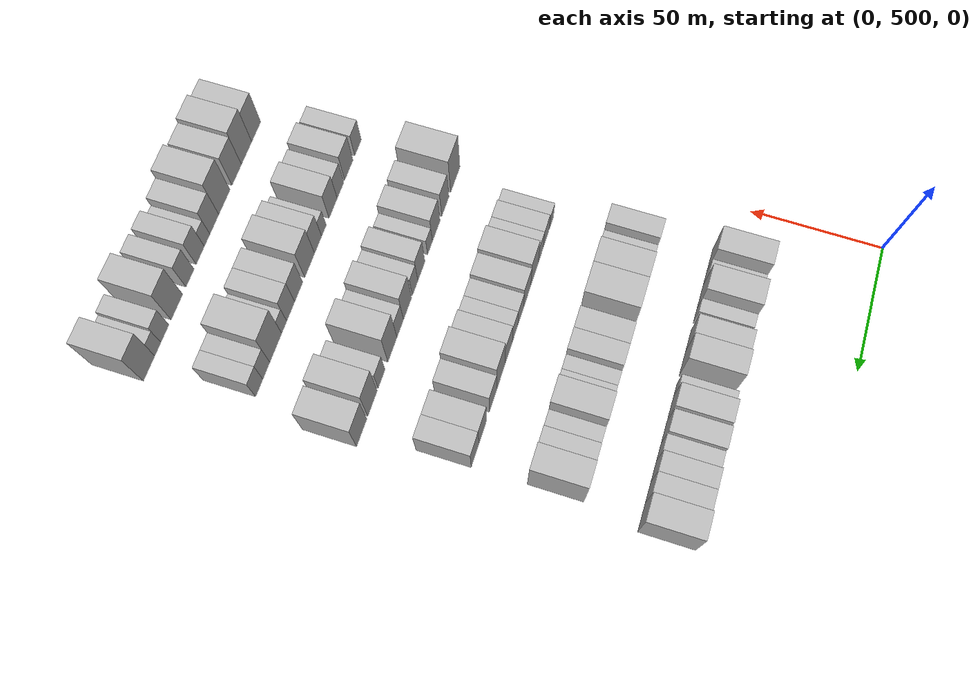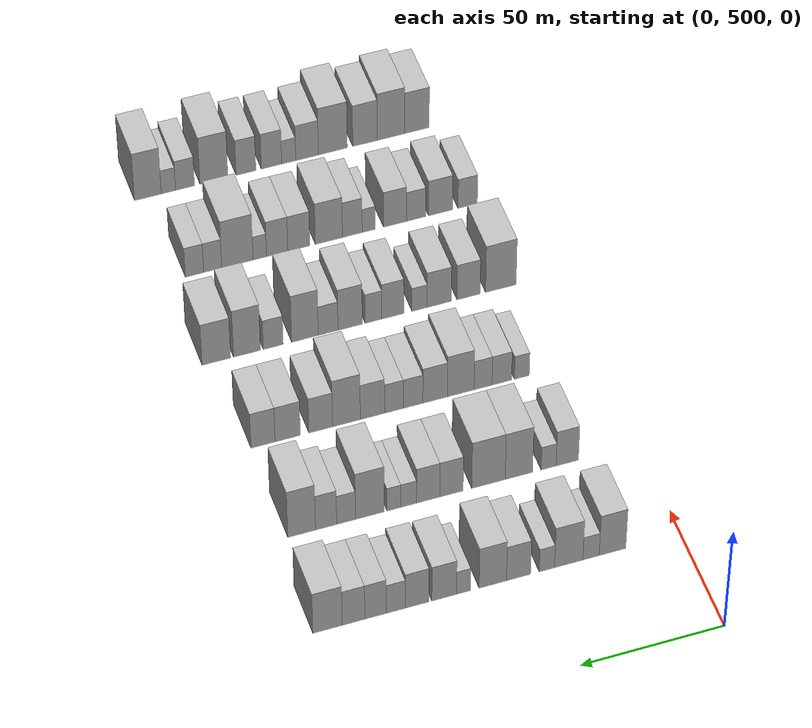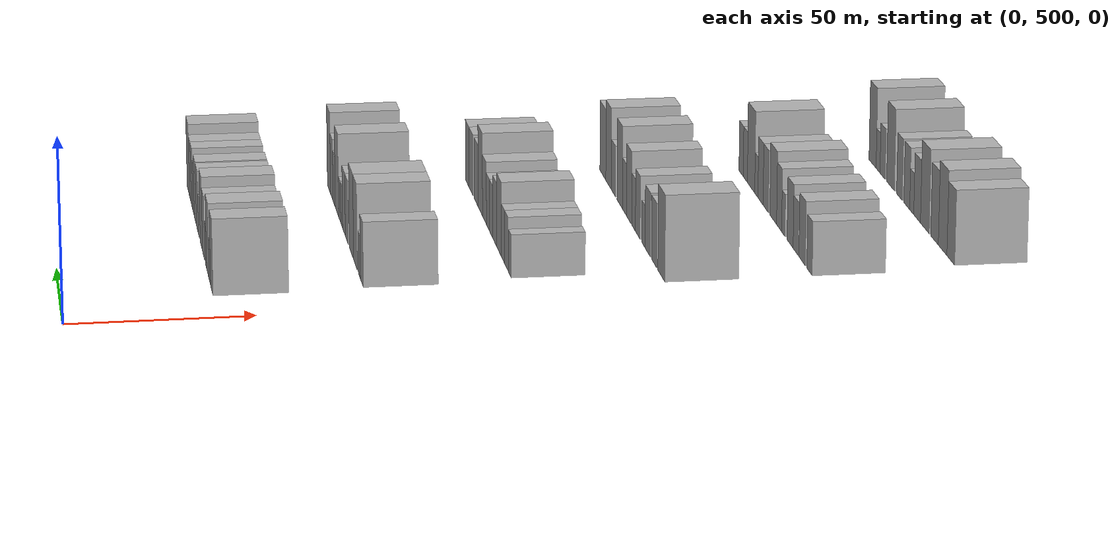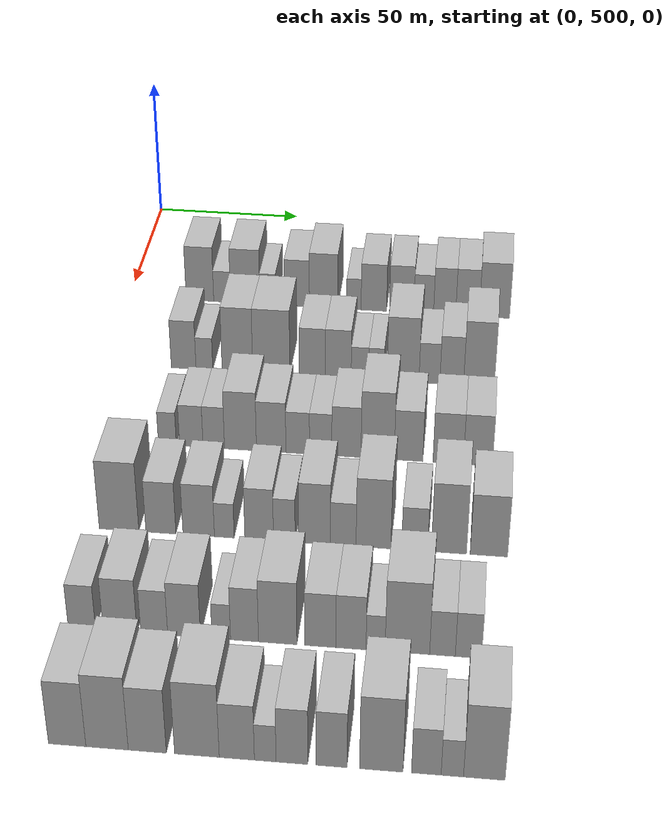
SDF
<sdf version="1.6">
 <world name="default">
  <model name="building_128">
   <static>1</static>
   <pose>50.0000 524.1655 0 0.000000 0.000000 0.000000</pose>
   <link name="link">
    <pose>0 0 10.50 0 0 0</pose>
    <collision name="collision"><geometry><box><size>20.0000 9.3599 21.0000</size></box></geometry></collision>
    <visual name="visual">
     <cast_shadows>0</cast_shadows>
     <geometry><box><size>20.0000 9.3599 21.0000</size></box></geometry>
     <material>
      <script>
       <uri>model://HANNAS_wall/materials/scripts</uri>
       <uri>model://HANNAS_wall/materials/textures</uri>
       <name>vrc/HANNAS_wall</name>
      </script>
     </material>
    </visual>
   </link>
  </model>
  <model name="building_129">
   <static>1</static>
   <pose>50.0000 531.7003 0 0.000000 0.000000 0.000000</pose>
   <link name="link">
    <pose>0 0 6.00 0 0 0</pose>
    <collision name="collision"><geometry><box><size>20.0000 5.7096 12.0000</size></box></geometry></collision>
    <visual name="visual">
     <cast_shadows>0</cast_shadows>
     <geometry><box><size>20.0000 5.7096 12.0000</size></box></geometry>
     <material>
      <script>
       <uri>model://HANNAS_wall/materials/scripts</uri>
       <uri>model://HANNAS_wall/materials/textures</uri>
       <name>vrc/HANNAS_wall</name>
      </script>
     </material>
    </visual>
   </link>
  </model>
  <model name="building_130">
   <static>1</static>
   <pose>50.0000 539.5301 0 0.000000 0.000000 0.000000</pose>
   <link name="link">
    <pose>0 0 10.50 0 0 0</pose>
    <collision name="collision"><geometry><box><size>20.0000 9.9501 21.0000</size></box></geometry></collision>
    <visual name="visual">
     <cast_shadows>0</cast_shadows>
     <geometry><box><size>20.0000 9.9501 21.0000</size></box></geometry>
     <material>
      <script>
       <uri>model://HANNAS_wall/materials/scripts</uri>
       <uri>model://HANNAS_wall/materials/textures</uri>
       <name>vrc/HANNAS_wall</name>
      </script>
     </material>
    </visual>
   </link>
  </model>
  <model name="building_131">
   <static>1</static>
   <pose>50.0000 547.1738 0 0.000000 0.000000 0.000000</pose>
   <link name="link">
    <pose>0 0 6.00 0 0 0</pose>
    <collision name="collision"><geometry><box><size>20.0000 5.3373 12.0000</size></box></geometry></collision>
    <visual name="visual">
     <cast_shadows>0</cast_shadows>
     <geometry><box><size>20.0000 5.3373 12.0000</size></box></geometry>
     <material>
      <script>
       <uri>model://HANNAS_wall/materials/scripts</uri>
       <uri>model://HANNAS_wall/materials/textures</uri>
       <name>vrc/HANNAS_wall</name>
      </script>
     </material>
    </visual>
   </link>
  </model>
  <model name="building_132">
   <static>1</static>
   <pose>50.0000 557.0391 0 0.000000 0.000000 0.000000</pose>
   <link name="link">
    <pose>0 0 9.00 0 0 0</pose>
    <collision name="collision"><geometry><box><size>20.0000 8.3932 18.0000</size></box></geometry></collision>
    <visual name="visual">
     <cast_shadows>0</cast_shadows>
     <geometry><box><size>20.0000 8.3932 18.0000</size></box></geometry>
     <material>
      <script>
       <uri>model://HANNAS_wall/materials/scripts</uri>
       <uri>model://HANNAS_wall/materials/textures</uri>
       <name>vrc/HANNAS_wall</name>
      </script>
     </material>
    </visual>
   </link>
  </model>
  <model name="building_133">
   <static>1</static>
   <pose>50.0000 565.9929 0 0.000000 0.000000 0.000000</pose>
   <link name="link">
    <pose>0 0 10.50 0 0 0</pose>
    <collision name="collision"><geometry><box><size>20.0000 9.5145 21.0000</size></box></geometry></collision>
    <visual name="visual">
     <cast_shadows>0</cast_shadows>
     <geometry><box><size>20.0000 9.5145 21.0000</size></box></geometry>
     <material>
      <script>
       <uri>model://HANNAS_wall/materials/scripts</uri>
       <uri>model://HANNAS_wall/materials/textures</uri>
       <name>vrc/HANNAS_wall</name>
      </script>
     </material>
    </visual>
   </link>
  </model>
  <model name="building_134">
   <static>1</static>
   <pose>50.0000 576.1622 0 0.000000 0.000000 0.000000</pose>
   <link name="link">
    <pose>0 0 6.00 0 0 0</pose>
    <collision name="collision"><geometry><box><size>20.0000 4.8240 12.0000</size></box></geometry></collision>
    <visual name="visual">
     <cast_shadows>0</cast_shadows>
     <geometry><box><size>20.0000 4.8240 12.0000</size></box></geometry>
     <material>
      <script>
       <uri>model://HANNAS_wall/materials/scripts</uri>
       <uri>model://HANNAS_wall/materials/textures</uri>
       <name>vrc/HANNAS_wall</name>
      </script>
     </material>
    </visual>
   </link>
  </model>
  <model name="building_135">
   <static>1</static>
   <pose>50.0000 582.8428 0 0.000000 0.000000 0.000000</pose>
   <link name="link">
    <pose>0 0 9.00 0 0 0</pose>
    <collision name="collision"><geometry><box><size>20.0000 8.5372 18.0000</size></box></geometry></collision>
    <visual name="visual">
     <cast_shadows>0</cast_shadows>
     <geometry><box><size>20.0000 8.5372 18.0000</size></box></geometry>
     <material>
      <script>
       <uri>model://HANNAS_wall/materials/scripts</uri>
       <uri>model://HANNAS_wall/materials/textures</uri>
       <name>vrc/HANNAS_wall</name>
      </script>
     </material>
    </visual>
   </link>
  </model>
  <model name="building_136">
   <static>1</static>
   <pose>50.0000 592.1822 0 0.000000 0.000000 0.000000</pose>
   <link name="link">
    <pose>0 0 9.00 0 0 0</pose>
    <collision name="collision"><geometry><box><size>20.0000 8.1417 18.0000</size></box></geometry></collision>
    <visual name="visual">
     <cast_shadows>0</cast_shadows>
     <geometry><box><size>20.0000 8.1417 18.0000</size></box></geometry>
     <material>
      <script>
       <uri>model://HANNAS_wall/materials/scripts</uri>
       <uri>model://HANNAS_wall/materials/textures</uri>
       <name>vrc/HANNAS_wall</name>
      </script>
     </material>
    </visual>
   </link>
  </model>
  <model name="building_137">
   <static>1</static>
   <pose>50.0000 599.5396 0 0.000000 0.000000 0.000000</pose>
   <link name="link">
    <pose>0 0 7.50 0 0 0</pose>
    <collision name="collision"><geometry><box><size>20.0000 6.5730 15.0000</size></box></geometry></collision>
    <visual name="visual">
     <cast_shadows>0</cast_shadows>
     <geometry><box><size>20.0000 6.5730 15.0000</size></box></geometry>
     <material>
      <script>
       <uri>model://HANNAS_wall/materials/scripts</uri>
       <uri>model://HANNAS_wall/materials/textures</uri>
       <name>vrc/HANNAS_wall</name>
      </script>
     </material>
    </visual>
   </link>
  </model>
  <model name="building_138">
   <static>1</static>
   <pose>50.0000 606.4986 0 0.000000 0.000000 0.000000</pose>
   <link name="link">
    <pose>0 0 9.00 0 0 0</pose>
    <collision name="collision"><geometry><box><size>20.0000 7.3450 18.0000</size></box></geometry></collision>
    <visual name="visual">
     <cast_shadows>0</cast_shadows>
     <geometry><box><size>20.0000 7.3450 18.0000</size></box></geometry>
     <material>
      <script>
       <uri>model://HANNAS_wall/materials/scripts</uri>
       <uri>model://HANNAS_wall/materials/textures</uri>
       <name>vrc/HANNAS_wall</name>
      </script>
     </material>
    </visual>
   </link>
  </model>
  <model name="building_139">
   <static>1</static>
   <pose>50.0000 614.0654 0 0.000000 0.000000 0.000000</pose>
   <link name="link">
    <pose>0 0 9.00 0 0 0</pose>
    <collision name="collision"><geometry><box><size>20.0000 7.7885 18.0000</size></box></geometry></collision>
    <visual name="visual">
     <cast_shadows>0</cast_shadows>
     <geometry><box><size>20.0000 7.7885 18.0000</size></box></geometry>
     <material>
      <script>
       <uri>model://HANNAS_wall/materials/scripts</uri>
       <uri>model://HANNAS_wall/materials/textures</uri>
       <name>vrc/HANNAS_wall</name>
      </script>
     </material>
    </visual>
   </link>
  </model>
  <model name="building_140">
   <static>1</static>
   <pose>50.0000 622.9785 0 0.000000 0.000000 0.000000</pose>
   <link name="link">
    <pose>0 0 10.50 0 0 0</pose>
    <collision name="collision"><geometry><box><size>20.0000 10.0376 21.0000</size></box></geometry></collision>
    <visual name="visual">
     <cast_shadows>0</cast_shadows>
     <geometry><box><size>20.0000 10.0376 21.0000</size></box></geometry>
     <material>
      <script>
       <uri>model://HANNAS_wall/materials/scripts</uri>
       <uri>model://HANNAS_wall/materials/textures</uri>
       <name>vrc/HANNAS_wall</name>
      </script>
     </material>
    </visual>
   </link>
  </model>
  <model name="building_263">
   <static>1</static>
   <pose>90.0000 525.4689 0 0.000000 0.000000 0.000000</pose>
   <link name="link">
    <pose>0 0 9.00 0 0 0</pose>
    <collision name="collision"><geometry><box><size>20.0000 7.9334 18.0000</size></box></geometry></collision>
    <visual name="visual">
     <cast_shadows>0</cast_shadows>
     <geometry><box><size>20.0000 7.9334 18.0000</size></box></geometry>
     <material>
      <script>
       <uri>model://HANNAS_wall/materials/scripts</uri>
       <uri>model://HANNAS_wall/materials/textures</uri>
       <name>vrc/HANNAS_wall</name>
      </script>
     </material>
    </visual>
   </link>
  </model>
  <model name="building_264">
   <static>1</static>
   <pose>90.0000 532.1202 0 0.000000 0.000000 0.000000</pose>
   <link name="link">
    <pose>0 0 6.00 0 0 0</pose>
    <collision name="collision"><geometry><box><size>20.0000 5.3691 12.0000</size></box></geometry></collision>
    <visual name="visual">
     <cast_shadows>0</cast_shadows>
     <geometry><box><size>20.0000 5.3691 12.0000</size></box></geometry>
     <material>
      <script>
       <uri>model://HANNAS_wall/materials/scripts</uri>
       <uri>model://HANNAS_wall/materials/textures</uri>
       <name>vrc/HANNAS_wall</name>
      </script>
     </material>
    </visual>
   </link>
  </model>
  <model name="building_265">
   <static>1</static>
   <pose>90.0000 542.6974 0 0.000000 0.000000 0.000000</pose>
   <link name="link">
    <pose>0 0 12.00 0 0 0</pose>
    <collision name="collision"><geometry><box><size>20.0000 9.7853 24.0000</size></box></geometry></collision>
    <visual name="visual">
     <cast_shadows>0</cast_shadows>
     <geometry><box><size>20.0000 9.7853 24.0000</size></box></geometry>
     <material>
      <script>
       <uri>model://HANNAS_wall/materials/scripts</uri>
       <uri>model://HANNAS_wall/materials/textures</uri>
       <name>vrc/HANNAS_wall</name>
      </script>
     </material>
    </visual>
   </link>
  </model>
  <model name="building_266">
   <static>1</static>
   <pose>90.0000 553.4992 0 0.000000 0.000000 0.000000</pose>
   <link name="link">
    <pose>0 0 12.00 0 0 0</pose>
    <collision name="collision"><geometry><box><size>20.0000 11.8182 24.0000</size></box></geometry></collision>
    <visual name="visual">
     <cast_shadows>0</cast_shadows>
     <geometry><box><size>20.0000 11.8182 24.0000</size></box></geometry>
     <material>
      <script>
       <uri>model://HANNAS_wall/materials/scripts</uri>
       <uri>model://HANNAS_wall/materials/textures</uri>
       <name>vrc/HANNAS_wall</name>
      </script>
     </material>
    </visual>
   </link>
  </model>
  <model name="building_267">
   <static>1</static>
   <pose>90.0000 566.5282 0 0.000000 0.000000 0.000000</pose>
   <link name="link">
    <pose>0 0 9.00 0 0 0</pose>
    <collision name="collision"><geometry><box><size>20.0000 8.2398 18.0000</size></box></geometry></collision>
    <visual name="visual">
     <cast_shadows>0</cast_shadows>
     <geometry><box><size>20.0000 8.2398 18.0000</size></box></geometry>
     <material>
      <script>
       <uri>model://HANNAS_wall/materials/scripts</uri>
       <uri>model://HANNAS_wall/materials/textures</uri>
       <name>vrc/HANNAS_wall</name>
      </script>
     </material>
    </visual>
   </link>
  </model>
  <model name="building_268">
   <static>1</static>
   <pose>90.0000 574.7511 0 0.000000 0.000000 0.000000</pose>
   <link name="link">
    <pose>0 0 9.00 0 0 0</pose>
    <collision name="collision"><geometry><box><size>20.0000 8.2061 18.0000</size></box></geometry></collision>
    <visual name="visual">
     <cast_shadows>0</cast_shadows>
     <geometry><box><size>20.0000 8.2061 18.0000</size></box></geometry>
     <material>
      <script>
       <uri>model://HANNAS_wall/materials/scripts</uri>
       <uri>model://HANNAS_wall/materials/textures</uri>
       <name>vrc/HANNAS_wall</name>
      </script>
     </material>
    </visual>
   </link>
  </model>
  <model name="building_269">
   <static>1</static>
   <pose>90.0000 581.5996 0 0.000000 0.000000 0.000000</pose>
   <link name="link">
    <pose>0 0 6.00 0 0 0</pose>
    <collision name="collision"><geometry><box><size>20.0000 5.4908 12.0000</size></box></geometry></collision>
    <visual name="visual">
     <cast_shadows>0</cast_shadows>
     <geometry><box><size>20.0000 5.4908 12.0000</size></box></geometry>
     <material>
      <script>
       <uri>model://HANNAS_wall/materials/scripts</uri>
       <uri>model://HANNAS_wall/materials/textures</uri>
       <name>vrc/HANNAS_wall</name>
      </script>
     </material>
    </visual>
   </link>
  </model>
  <model name="building_270">
   <static>1</static>
   <pose>90.0000 586.7724 0 0.000000 0.000000 0.000000</pose>
   <link name="link">
    <pose>0 0 6.00 0 0 0</pose>
    <collision name="collision"><geometry><box><size>20.0000 4.8548 12.0000</size></box></geometry></collision>
    <visual name="visual">
     <cast_shadows>0</cast_shadows>
     <geometry><box><size>20.0000 4.8548 12.0000</size></box></geometry>
     <material>
      <script>
       <uri>model://HANNAS_wall/materials/scripts</uri>
       <uri>model://HANNAS_wall/materials/textures</uri>
       <name>vrc/HANNAS_wall</name>
      </script>
     </material>
    </visual>
   </link>
  </model>
  <model name="building_271">
   <static>1</static>
   <pose>90.0000 595.2187 0 0.000000 0.000000 0.000000</pose>
   <link name="link">
    <pose>0 0 12.00 0 0 0</pose>
    <collision name="collision"><geometry><box><size>20.0000 10.0378 24.0000</size></box></geometry></collision>
    <visual name="visual">
     <cast_shadows>0</cast_shadows>
     <geometry><box><size>20.0000 10.0378 24.0000</size></box></geometry>
     <material>
      <script>
       <uri>model://HANNAS_wall/materials/scripts</uri>
       <uri>model://HANNAS_wall/materials/textures</uri>
       <name>vrc/HANNAS_wall</name>
      </script>
     </material>
    </visual>
   </link>
  </model>
  <model name="building_272">
   <static>1</static>
   <pose>90.0000 603.5141 0 0.000000 0.000000 0.000000</pose>
   <link name="link">
    <pose>0 0 7.50 0 0 0</pose>
    <collision name="collision"><geometry><box><size>20.0000 6.5531 15.0000</size></box></geometry></collision>
    <visual name="visual">
     <cast_shadows>0</cast_shadows>
     <geometry><box><size>20.0000 6.5531 15.0000</size></box></geometry>
     <material>
      <script>
       <uri>model://HANNAS_wall/materials/scripts</uri>
       <uri>model://HANNAS_wall/materials/textures</uri>
       <name>vrc/HANNAS_wall</name>
      </script>
     </material>
    </visual>
   </link>
  </model>
  <model name="building_273">
   <static>1</static>
   <pose>90.0000 610.4930 0 0.000000 0.000000 0.000000</pose>
   <link name="link">
    <pose>0 0 9.00 0 0 0</pose>
    <collision name="collision"><geometry><box><size>20.0000 7.4047 18.0000</size></box></geometry></collision>
    <visual name="visual">
     <cast_shadows>0</cast_shadows>
     <geometry><box><size>20.0000 7.4047 18.0000</size></box></geometry>
     <material>
      <script>
       <uri>model://HANNAS_wall/materials/scripts</uri>
       <uri>model://HANNAS_wall/materials/textures</uri>
       <name>vrc/HANNAS_wall</name>
      </script>
     </material>
    </visual>
   </link>
  </model>
  <model name="building_274">
   <static>1</static>
   <pose>90.0000 619.0040 0 0.000000 0.000000 0.000000</pose>
   <link name="link">
    <pose>0 0 12.00 0 0 0</pose>
    <collision name="collision"><geometry><box><size>20.0000 9.6171 24.0000</size></box></geometry></collision>
    <visual name="visual">
     <cast_shadows>0</cast_shadows>
     <geometry><box><size>20.0000 9.6171 24.0000</size></box></geometry>
     <material>
      <script>
       <uri>model://HANNAS_wall/materials/scripts</uri>
       <uri>model://HANNAS_wall/materials/textures</uri>
       <name>vrc/HANNAS_wall</name>
      </script>
     </material>
    </visual>
   </link>
  </model>
  <model name="building_402">
   <static>1</static>
   <pose>130.0000 527.3983 0 0.000000 0.000000 0.000000</pose>
   <link name="link">
    <pose>0 0 6.00 0 0 0</pose>
    <collision name="collision"><geometry><box><size>20.0000 5.4114 12.0000</size></box></geometry></collision>
    <visual name="visual">
     <cast_shadows>0</cast_shadows>
     <geometry><box><size>20.0000 5.4114 12.0000</size></box></geometry>
     <material>
      <script>
       <uri>model://HANNAS_wall/materials/scripts</uri>
       <uri>model://HANNAS_wall/materials/textures</uri>
       <name>vrc/HANNAS_wall</name>
      </script>
     </material>
    </visual>
   </link>
  </model>
  <model name="building_403">
   <static>1</static>
   <pose>130.0000 534.6347 0 0.000000 0.000000 0.000000</pose>
   <link name="link">
    <pose>0 0 7.50 0 0 0</pose>
    <collision name="collision"><geometry><box><size>20.0000 7.0615 15.0000</size></box></geometry></collision>
    <visual name="visual">
     <cast_shadows>0</cast_shadows>
     <geometry><box><size>20.0000 7.0615 15.0000</size></box></geometry>
     <material>
      <script>
       <uri>model://HANNAS_wall/materials/scripts</uri>
       <uri>model://HANNAS_wall/materials/textures</uri>
       <name>vrc/HANNAS_wall</name>
      </script>
     </material>
    </visual>
   </link>
  </model>
  <model name="building_404">
   <static>1</static>
   <pose>130.0000 541.3958 0 0.000000 0.000000 0.000000</pose>
   <link name="link">
    <pose>0 0 7.50 0 0 0</pose>
    <collision name="collision"><geometry><box><size>20.0000 6.4606 15.0000</size></box></geometry></collision>
    <visual name="visual">
     <cast_shadows>0</cast_shadows>
     <geometry><box><size>20.0000 6.4606 15.0000</size></box></geometry>
     <material>
      <script>
       <uri>model://HANNAS_wall/materials/scripts</uri>
       <uri>model://HANNAS_wall/materials/textures</uri>
       <name>vrc/HANNAS_wall</name>
      </script>
     </material>
    </visual>
   </link>
  </model>
  <model name="building_405">
   <static>1</static>
   <pose>130.0000 549.4182 0 0.000000 0.000000 0.000000</pose>
   <link name="link">
    <pose>0 0 10.50 0 0 0</pose>
    <collision name="collision"><geometry><box><size>20.0000 9.5842 21.0000</size></box></geometry></collision>
    <visual name="visual">
     <cast_shadows>0</cast_shadows>
     <geometry><box><size>20.0000 9.5842 21.0000</size></box></geometry>
     <material>
      <script>
       <uri>model://HANNAS_wall/materials/scripts</uri>
       <uri>model://HANNAS_wall/materials/textures</uri>
       <name>vrc/HANNAS_wall</name>
      </script>
     </material>
    </visual>
   </link>
  </model>
  <model name="building_406">
   <static>1</static>
   <pose>130.0000 558.6119 0 0.000000 0.000000 0.000000</pose>
   <link name="link">
    <pose>0 0 9.00 0 0 0</pose>
    <collision name="collision"><geometry><box><size>20.0000 8.8032 18.0000</size></box></geometry></collision>
    <visual name="visual">
     <cast_shadows>0</cast_shadows>
     <geometry><box><size>20.0000 8.8032 18.0000</size></box></geometry>
     <material>
      <script>
       <uri>model://HANNAS_wall/materials/scripts</uri>
       <uri>model://HANNAS_wall/materials/textures</uri>
       <name>vrc/HANNAS_wall</name>
      </script>
     </material>
    </visual>
   </link>
  </model>
  <model name="building_407">
   <static>1</static>
   <pose>130.0000 566.5294 0 0.000000 0.000000 0.000000</pose>
   <link name="link">
    <pose>0 0 7.50 0 0 0</pose>
    <collision name="collision"><geometry><box><size>20.0000 7.0318 15.0000</size></box></geometry></collision>
    <visual name="visual">
     <cast_shadows>0</cast_shadows>
     <geometry><box><size>20.0000 7.0318 15.0000</size></box></geometry>
     <material>
      <script>
       <uri>model://HANNAS_wall/materials/scripts</uri>
       <uri>model://HANNAS_wall/materials/textures</uri>
       <name>vrc/HANNAS_wall</name>
      </script>
     </material>
    </visual>
   </link>
  </model>
  <model name="building_408">
   <static>1</static>
   <pose>130.0000 573.3612 0 0.000000 0.000000 0.000000</pose>
   <link name="link">
    <pose>0 0 7.50 0 0 0</pose>
    <collision name="collision"><geometry><box><size>20.0000 6.6319 15.0000</size></box></geometry></collision>
    <visual name="visual">
     <cast_shadows>0</cast_shadows>
     <geometry><box><size>20.0000 6.6319 15.0000</size></box></geometry>
     <material>
      <script>
       <uri>model://HANNAS_wall/materials/scripts</uri>
       <uri>model://HANNAS_wall/materials/textures</uri>
       <name>vrc/HANNAS_wall</name>
      </script>
     </material>
    </visual>
   </link>
  </model>
  <model name="building_409">
   <static>1</static>
   <pose>130.0000 581.0123 0 0.000000 0.000000 0.000000</pose>
   <link name="link">
    <pose>0 0 9.00 0 0 0</pose>
    <collision name="collision"><geometry><box><size>20.0000 8.6702 18.0000</size></box></geometry></collision>
    <visual name="visual">
     <cast_shadows>0</cast_shadows>
     <geometry><box><size>20.0000 8.6702 18.0000</size></box></geometry>
     <material>
      <script>
       <uri>model://HANNAS_wall/materials/scripts</uri>
       <uri>model://HANNAS_wall/materials/textures</uri>
       <name>vrc/HANNAS_wall</name>
      </script>
     </material>
    </visual>
   </link>
  </model>
  <model name="building_410">
   <static>1</static>
   <pose>130.0000 590.2803 0 0.000000 0.000000 0.000000</pose>
   <link name="link">
    <pose>0 0 12.00 0 0 0</pose>
    <collision name="collision"><geometry><box><size>20.0000 9.8660 24.0000</size></box></geometry></collision>
    <visual name="visual">
     <cast_shadows>0</cast_shadows>
     <geometry><box><size>20.0000 9.8660 24.0000</size></box></geometry>
     <material>
      <script>
       <uri>model://HANNAS_wall/materials/scripts</uri>
       <uri>model://HANNAS_wall/materials/textures</uri>
       <name>vrc/HANNAS_wall</name>
      </script>
     </material>
    </visual>
   </link>
  </model>
  <model name="building_411">
   <static>1</static>
   <pose>130.0000 599.4263 0 0.000000 0.000000 0.000000</pose>
   <link name="link">
    <pose>0 0 9.00 0 0 0</pose>
    <collision name="collision"><geometry><box><size>20.0000 8.4260 18.0000</size></box></geometry></collision>
    <visual name="visual">
     <cast_shadows>0</cast_shadows>
     <geometry><box><size>20.0000 8.4260 18.0000</size></box></geometry>
     <material>
      <script>
       <uri>model://HANNAS_wall/materials/scripts</uri>
       <uri>model://HANNAS_wall/materials/textures</uri>
       <name>vrc/HANNAS_wall</name>
      </script>
     </material>
    </visual>
   </link>
  </model>
  <model name="building_412">
   <static>1</static>
   <pose>130.0000 611.1164 0 0.000000 0.000000 0.000000</pose>
   <link name="link">
    <pose>0 0 9.00 0 0 0</pose>
    <collision name="collision"><geometry><box><size>20.0000 8.9542 18.0000</size></box></geometry></collision>
    <visual name="visual">
     <cast_shadows>0</cast_shadows>
     <geometry><box><size>20.0000 8.9542 18.0000</size></box></geometry>
     <material>
      <script>
       <uri>model://HANNAS_wall/materials/scripts</uri>
       <uri>model://HANNAS_wall/materials/textures</uri>
       <name>vrc/HANNAS_wall</name>
      </script>
     </material>
    </visual>
   </link>
  </model>
  <model name="building_413">
   <static>1</static>
   <pose>130.0000 619.8438 0 0.000000 0.000000 0.000000</pose>
   <link name="link">
    <pose>0 0 9.00 0 0 0</pose>
    <collision name="collision"><geometry><box><size>20.0000 8.5006 18.0000</size></box></geometry></collision>
    <visual name="visual">
     <cast_shadows>0</cast_shadows>
     <geometry><box><size>20.0000 8.5006 18.0000</size></box></geometry>
     <material>
      <script>
       <uri>model://HANNAS_wall/materials/scripts</uri>
       <uri>model://HANNAS_wall/materials/textures</uri>
       <name>vrc/HANNAS_wall</name>
      </script>
     </material>
    </visual>
   </link>
  </model>
  <model name="building_529">
   <static>1</static>
   <pose>170.0000 520.8770 0 0.000000 0.000000 0.000000</pose>
   <link name="link">
    <pose>0 0 12.00 0 0 0</pose>
    <collision name="collision"><geometry><box><size>20.0000 11.2288 24.0000</size></box></geometry></collision>
    <visual name="visual">
     <cast_shadows>0</cast_shadows>
     <geometry><box><size>20.0000 11.2288 24.0000</size></box></geometry>
     <material>
      <script>
       <uri>model://HANNAS_wall/materials/scripts</uri>
       <uri>model://HANNAS_wall/materials/textures</uri>
       <name>vrc/HANNAS_wall</name>
      </script>
     </material>
    </visual>
   </link>
  </model>
  <model name="building_530">
   <static>1</static>
   <pose>170.0000 532.7389 0 0.000000 0.000000 0.000000</pose>
   <link name="link">
    <pose>0 0 9.00 0 0 0</pose>
    <collision name="collision"><geometry><box><size>20.0000 8.4951 18.0000</size></box></geometry></collision>
    <visual name="visual">
     <cast_shadows>0</cast_shadows>
     <geometry><box><size>20.0000 8.4951 18.0000</size></box></geometry>
     <material>
      <script>
       <uri>model://HANNAS_wall/materials/scripts</uri>
       <uri>model://HANNAS_wall/materials/textures</uri>
       <name>vrc/HANNAS_wall</name>
      </script>
     </material>
    </visual>
   </link>
  </model>
  <model name="building_531">
   <static>1</static>
   <pose>170.0000 543.4149 0 0.000000 0.000000 0.000000</pose>
   <link name="link">
    <pose>0 0 9.00 0 0 0</pose>
    <collision name="collision"><geometry><box><size>20.0000 8.8570 18.0000</size></box></geometry></collision>
    <visual name="visual">
     <cast_shadows>0</cast_shadows>
     <geometry><box><size>20.0000 8.8570 18.0000</size></box></geometry>
     <material>
      <script>
       <uri>model://HANNAS_wall/materials/scripts</uri>
       <uri>model://HANNAS_wall/materials/textures</uri>
       <name>vrc/HANNAS_wall</name>
      </script>
     </material>
    </visual>
   </link>
  </model>
  <model name="building_532">
   <static>1</static>
   <pose>170.0000 550.6193 0 0.000000 0.000000 0.000000</pose>
   <link name="link">
    <pose>0 0 6.00 0 0 0</pose>
    <collision name="collision"><geometry><box><size>20.0000 5.5518 12.0000</size></box></geometry></collision>
    <visual name="visual">
     <cast_shadows>0</cast_shadows>
     <geometry><box><size>20.0000 5.5518 12.0000</size></box></geometry>
     <material>
      <script>
       <uri>model://HANNAS_wall/materials/scripts</uri>
       <uri>model://HANNAS_wall/materials/textures</uri>
       <name>vrc/HANNAS_wall</name>
      </script>
     </material>
    </visual>
   </link>
  </model>
  <model name="building_533">
   <static>1</static>
   <pose>170.0000 560.3920 0 0.000000 0.000000 0.000000</pose>
   <link name="link">
    <pose>0 0 9.00 0 0 0</pose>
    <collision name="collision"><geometry><box><size>20.0000 7.9935 18.0000</size></box></geometry></collision>
    <visual name="visual">
     <cast_shadows>0</cast_shadows>
     <geometry><box><size>20.0000 7.9935 18.0000</size></box></geometry>
     <material>
      <script>
       <uri>model://HANNAS_wall/materials/scripts</uri>
       <uri>model://HANNAS_wall/materials/textures</uri>
       <name>vrc/HANNAS_wall</name>
      </script>
     </material>
    </visual>
   </link>
  </model>
  <model name="building_534">
   <static>1</static>
   <pose>170.0000 567.4216 0 0.000000 0.000000 0.000000</pose>
   <link name="link">
    <pose>0 0 7.50 0 0 0</pose>
    <collision name="collision"><geometry><box><size>20.0000 6.0657 15.0000</size></box></geometry></collision>
    <visual name="visual">
     <cast_shadows>0</cast_shadows>
     <geometry><box><size>20.0000 6.0657 15.0000</size></box></geometry>
     <material>
      <script>
       <uri>model://HANNAS_wall/materials/scripts</uri>
       <uri>model://HANNAS_wall/materials/textures</uri>
       <name>vrc/HANNAS_wall</name>
      </script>
     </material>
    </visual>
   </link>
  </model>
  <model name="building_535">
   <static>1</static>
   <pose>170.0000 575.8625 0 0.000000 0.000000 0.000000</pose>
   <link name="link">
    <pose>0 0 10.50 0 0 0</pose>
    <collision name="collision"><geometry><box><size>20.0000 8.8162 21.0000</size></box></geometry></collision>
    <visual name="visual">
     <cast_shadows>0</cast_shadows>
     <geometry><box><size>20.0000 8.8162 21.0000</size></box></geometry>
     <material>
      <script>
       <uri>model://HANNAS_wall/materials/scripts</uri>
       <uri>model://HANNAS_wall/materials/textures</uri>
       <name>vrc/HANNAS_wall</name>
      </script>
     </material>
    </visual>
   </link>
  </model>
  <model name="building_536">
   <static>1</static>
   <pose>170.0000 583.8295 0 0.000000 0.000000 0.000000</pose>
   <link name="link">
    <pose>0 0 7.50 0 0 0</pose>
    <collision name="collision"><geometry><box><size>20.0000 7.1177 15.0000</size></box></geometry></collision>
    <visual name="visual">
     <cast_shadows>0</cast_shadows>
     <geometry><box><size>20.0000 7.1177 15.0000</size></box></geometry>
     <material>
      <script>
       <uri>model://HANNAS_wall/materials/scripts</uri>
       <uri>model://HANNAS_wall/materials/textures</uri>
       <name>vrc/HANNAS_wall</name>
      </script>
     </material>
    </visual>
   </link>
  </model>
  <model name="building_537">
   <static>1</static>
   <pose>170.0000 592.2007 0 0.000000 0.000000 0.000000</pose>
   <link name="link">
    <pose>0 0 12.00 0 0 0</pose>
    <collision name="collision"><geometry><box><size>20.0000 9.6248 24.0000</size></box></geometry></collision>
    <visual name="visual">
     <cast_shadows>0</cast_shadows>
     <geometry><box><size>20.0000 9.6248 24.0000</size></box></geometry>
     <material>
      <script>
       <uri>model://HANNAS_wall/materials/scripts</uri>
       <uri>model://HANNAS_wall/materials/textures</uri>
       <name>vrc/HANNAS_wall</name>
      </script>
     </material>
    </visual>
   </link>
  </model>
  <model name="building_538">
   <static>1</static>
   <pose>170.0000 603.6072 0 0.000000 0.000000 0.000000</pose>
   <link name="link">
    <pose>0 0 7.50 0 0 0</pose>
    <collision name="collision"><geometry><box><size>20.0000 7.1881 15.0000</size></box></geometry></collision>
    <visual name="visual">
     <cast_shadows>0</cast_shadows>
     <geometry><box><size>20.0000 7.1881 15.0000</size></box></geometry>
     <material>
      <script>
       <uri>model://HANNAS_wall/materials/scripts</uri>
       <uri>model://HANNAS_wall/materials/textures</uri>
       <name>vrc/HANNAS_wall</name>
      </script>
     </material>
    </visual>
   </link>
  </model>
  <model name="building_539">
   <static>1</static>
   <pose>170.0000 613.0363 0 0.000000 0.000000 0.000000</pose>
   <link name="link">
    <pose>0 0 12.00 0 0 0</pose>
    <collision name="collision"><geometry><box><size>20.0000 9.6700 24.0000</size></box></geometry></collision>
    <visual name="visual">
     <cast_shadows>0</cast_shadows>
     <geometry><box><size>20.0000 9.6700 24.0000</size></box></geometry>
     <material>
      <script>
       <uri>model://HANNAS_wall/materials/scripts</uri>
       <uri>model://HANNAS_wall/materials/textures</uri>
       <name>vrc/HANNAS_wall</name>
      </script>
     </material>
    </visual>
   </link>
  </model>
  <model name="building_540">
   <static>1</static>
   <pose>170.0000 623.9938 0 0.000000 0.000000 0.000000</pose>
   <link name="link">
    <pose>0 0 10.50 0 0 0</pose>
    <collision name="collision"><geometry><box><size>20.0000 10.2451 21.0000</size></box></geometry></collision>
    <visual name="visual">
     <cast_shadows>0</cast_shadows>
     <geometry><box><size>20.0000 10.2451 21.0000</size></box></geometry>
     <material>
      <script>
       <uri>model://HANNAS_wall/materials/scripts</uri>
       <uri>model://HANNAS_wall/materials/textures</uri>
       <name>vrc/HANNAS_wall</name>
      </script>
     </material>
    </visual>
   </link>
  </model>
  <model name="building_674">
   <static>1</static>
   <pose>210.0000 519.1646 0 0.000000 0.000000 0.000000</pose>
   <link name="link">
    <pose>0 0 7.50 0 0 0</pose>
    <collision name="collision"><geometry><box><size>20.0000 7.2383 15.0000</size></box></geometry></collision>
    <visual name="visual">
     <cast_shadows>0</cast_shadows>
     <geometry><box><size>20.0000 7.2383 15.0000</size></box></geometry>
     <material>
      <script>
       <uri>model://HANNAS_wall/materials/scripts</uri>
       <uri>model://HANNAS_wall/materials/textures</uri>
       <name>vrc/HANNAS_wall</name>
      </script>
     </material>
    </visual>
   </link>
  </model>
  <model name="building_675">
   <static>1</static>
   <pose>210.0000 529.2689 0 0.000000 0.000000 0.000000</pose>
   <link name="link">
    <pose>0 0 9.00 0 0 0</pose>
    <collision name="collision"><geometry><box><size>20.0000 8.9703 18.0000</size></box></geometry></collision>
    <visual name="visual">
     <cast_shadows>0</cast_shadows>
     <geometry><box><size>20.0000 8.9703 18.0000</size></box></geometry>
     <material>
      <script>
       <uri>model://HANNAS_wall/materials/scripts</uri>
       <uri>model://HANNAS_wall/materials/textures</uri>
       <name>vrc/HANNAS_wall</name>
      </script>
     </material>
    </visual>
   </link>
  </model>
  <model name="building_676">
   <static>1</static>
   <pose>210.0000 538.2975 0 0.000000 0.000000 0.000000</pose>
   <link name="link">
    <pose>0 0 7.50 0 0 0</pose>
    <collision name="collision"><geometry><box><size>20.0000 7.0870 15.0000</size></box></geometry></collision>
    <visual name="visual">
     <cast_shadows>0</cast_shadows>
     <geometry><box><size>20.0000 7.0870 15.0000</size></box></geometry>
     <material>
      <script>
       <uri>model://HANNAS_wall/materials/scripts</uri>
       <uri>model://HANNAS_wall/materials/textures</uri>
       <name>vrc/HANNAS_wall</name>
      </script>
     </material>
    </visual>
   </link>
  </model>
  <model name="building_677">
   <static>1</static>
   <pose>210.0000 546.1446 0 0.000000 0.000000 0.000000</pose>
   <link name="link">
    <pose>0 0 9.00 0 0 0</pose>
    <collision name="collision"><geometry><box><size>20.0000 8.6071 18.0000</size></box></geometry></collision>
    <visual name="visual">
     <cast_shadows>0</cast_shadows>
     <geometry><box><size>20.0000 8.6071 18.0000</size></box></geometry>
     <material>
      <script>
       <uri>model://HANNAS_wall/materials/scripts</uri>
       <uri>model://HANNAS_wall/materials/textures</uri>
       <name>vrc/HANNAS_wall</name>
      </script>
     </material>
    </visual>
   </link>
  </model>
  <model name="building_678">
   <static>1</static>
   <pose>210.0000 555.8765 0 0.000000 0.000000 0.000000</pose>
   <link name="link">
    <pose>0 0 6.00 0 0 0</pose>
    <collision name="collision"><geometry><box><size>20.0000 4.8568 12.0000</size></box></geometry></collision>
    <visual name="visual">
     <cast_shadows>0</cast_shadows>
     <geometry><box><size>20.0000 4.8568 12.0000</size></box></geometry>
     <material>
      <script>
       <uri>model://HANNAS_wall/materials/scripts</uri>
       <uri>model://HANNAS_wall/materials/textures</uri>
       <name>vrc/HANNAS_wall</name>
      </script>
     </material>
    </visual>
   </link>
  </model>
  <model name="building_679">
   <static>1</static>
   <pose>210.0000 561.9498 0 0.000000 0.000000 0.000000</pose>
   <link name="link">
    <pose>0 0 9.00 0 0 0</pose>
    <collision name="collision"><geometry><box><size>20.0000 7.2898 18.0000</size></box></geometry></collision>
    <visual name="visual">
     <cast_shadows>0</cast_shadows>
     <geometry><box><size>20.0000 7.2898 18.0000</size></box></geometry>
     <material>
      <script>
       <uri>model://HANNAS_wall/materials/scripts</uri>
       <uri>model://HANNAS_wall/materials/textures</uri>
       <name>vrc/HANNAS_wall</name>
      </script>
     </material>
    </visual>
   </link>
  </model>
  <model name="building_680">
   <static>1</static>
   <pose>210.0000 570.5884 0 0.000000 0.000000 0.000000</pose>
   <link name="link">
    <pose>0 0 10.50 0 0 0</pose>
    <collision name="collision"><geometry><box><size>20.0000 9.9874 21.0000</size></box></geometry></collision>
    <visual name="visual">
     <cast_shadows>0</cast_shadows>
     <geometry><box><size>20.0000 9.9874 21.0000</size></box></geometry>
     <material>
      <script>
       <uri>model://HANNAS_wall/materials/scripts</uri>
       <uri>model://HANNAS_wall/materials/textures</uri>
       <name>vrc/HANNAS_wall</name>
      </script>
     </material>
    </visual>
   </link>
  </model>
  <model name="building_681">
   <static>1</static>
   <pose>210.0000 581.6278 0 0.000000 0.000000 0.000000</pose>
   <link name="link">
    <pose>0 0 9.00 0 0 0</pose>
    <collision name="collision"><geometry><box><size>20.0000 8.0915 18.0000</size></box></geometry></collision>
    <visual name="visual">
     <cast_shadows>0</cast_shadows>
     <geometry><box><size>20.0000 8.0915 18.0000</size></box></geometry>
     <material>
      <script>
       <uri>model://HANNAS_wall/materials/scripts</uri>
       <uri>model://HANNAS_wall/materials/textures</uri>
       <name>vrc/HANNAS_wall</name>
      </script>
     </material>
    </visual>
   </link>
  </model>
  <model name="building_682">
   <static>1</static>
   <pose>210.0000 589.5628 0 0.000000 0.000000 0.000000</pose>
   <link name="link">
    <pose>0 0 9.00 0 0 0</pose>
    <collision name="collision"><geometry><box><size>20.0000 7.7786 18.0000</size></box></geometry></collision>
    <visual name="visual">
     <cast_shadows>0</cast_shadows>
     <geometry><box><size>20.0000 7.7786 18.0000</size></box></geometry>
     <material>
      <script>
       <uri>model://HANNAS_wall/materials/scripts</uri>
       <uri>model://HANNAS_wall/materials/textures</uri>
       <name>vrc/HANNAS_wall</name>
      </script>
     </material>
    </visual>
   </link>
  </model>
  <model name="building_683">
   <static>1</static>
   <pose>210.0000 595.9127 0 0.000000 0.000000 0.000000</pose>
   <link name="link">
    <pose>0 0 6.00 0 0 0</pose>
    <collision name="collision"><geometry><box><size>20.0000 4.9212 12.0000</size></box></geometry></collision>
    <visual name="visual">
     <cast_shadows>0</cast_shadows>
     <geometry><box><size>20.0000 4.9212 12.0000</size></box></geometry>
     <material>
      <script>
       <uri>model://HANNAS_wall/materials/scripts</uri>
       <uri>model://HANNAS_wall/materials/textures</uri>
       <name>vrc/HANNAS_wall</name>
      </script>
     </material>
    </visual>
   </link>
  </model>
  <model name="building_684">
   <static>1</static>
   <pose>210.0000 604.0859 0 0.000000 0.000000 0.000000</pose>
   <link name="link">
    <pose>0 0 12.00 0 0 0</pose>
    <collision name="collision"><geometry><box><size>20.0000 11.4252 24.0000</size></box></geometry></collision>
    <visual name="visual">
     <cast_shadows>0</cast_shadows>
     <geometry><box><size>20.0000 11.4252 24.0000</size></box></geometry>
     <material>
      <script>
       <uri>model://HANNAS_wall/materials/scripts</uri>
       <uri>model://HANNAS_wall/materials/textures</uri>
       <name>vrc/HANNAS_wall</name>
      </script>
     </material>
    </visual>
   </link>
  </model>
  <model name="building_685">
   <static>1</static>
   <pose>210.0000 613.0786 0 0.000000 0.000000 0.000000</pose>
   <link name="link">
    <pose>0 0 7.50 0 0 0</pose>
    <collision name="collision"><geometry><box><size>20.0000 6.5601 15.0000</size></box></geometry></collision>
    <visual name="visual">
     <cast_shadows>0</cast_shadows>
     <geometry><box><size>20.0000 6.5601 15.0000</size></box></geometry>
     <material>
      <script>
       <uri>model://HANNAS_wall/materials/scripts</uri>
       <uri>model://HANNAS_wall/materials/textures</uri>
       <name>vrc/HANNAS_wall</name>
      </script>
     </material>
    </visual>
   </link>
  </model>
  <model name="building_686">
   <static>1</static>
   <pose>210.0000 619.7136 0 0.000000 0.000000 0.000000</pose>
   <link name="link">
    <pose>0 0 7.50 0 0 0</pose>
    <collision name="collision"><geometry><box><size>20.0000 6.7100 15.0000</size></box></geometry></collision>
    <visual name="visual">
     <cast_shadows>0</cast_shadows>
     <geometry><box><size>20.0000 6.7100 15.0000</size></box></geometry>
     <material>
      <script>
       <uri>model://HANNAS_wall/materials/scripts</uri>
       <uri>model://HANNAS_wall/materials/textures</uri>
       <name>vrc/HANNAS_wall</name>
      </script>
     </material>
    </visual>
   </link>
  </model>
  <model name="building_800">
   <static>1</static>
   <pose>250.0000 524.4258 0 0.000000 0.000000 0.000000</pose>
   <link name="link">
    <pose>0 0 10.50 0 0 0</pose>
    <collision name="collision"><geometry><box><size>20.0000 9.1909 21.0000</size></box></geometry></collision>
    <visual name="visual">
     <cast_shadows>0</cast_shadows>
     <geometry><box><size>20.0000 9.1909 21.0000</size></box></geometry>
     <material>
      <script>
       <uri>model://HANNAS_wall/materials/scripts</uri>
       <uri>model://HANNAS_wall/materials/textures</uri>
       <name>vrc/HANNAS_wall</name>
      </script>
     </material>
    </visual>
   </link>
  </model>
  <model name="building_801">
   <static>1</static>
   <pose>250.0000 534.2070 0 0.000000 0.000000 0.000000</pose>
   <link name="link">
    <pose>0 0 12.00 0 0 0</pose>
    <collision name="collision"><geometry><box><size>20.0000 10.3714 24.0000</size></box></geometry></collision>
    <visual name="visual">
     <cast_shadows>0</cast_shadows>
     <geometry><box><size>20.0000 10.3714 24.0000</size></box></geometry>
     <material>
      <script>
       <uri>model://HANNAS_wall/materials/scripts</uri>
       <uri>model://HANNAS_wall/materials/textures</uri>
       <name>vrc/HANNAS_wall</name>
      </script>
     </material>
    </visual>
   </link>
  </model>
  <model name="building_802">
   <static>1</static>
   <pose>250.0000 544.0336 0 0.000000 0.000000 0.000000</pose>
   <link name="link">
    <pose>0 0 10.50 0 0 0</pose>
    <collision name="collision"><geometry><box><size>20.0000 9.2820 21.0000</size></box></geometry></collision>
    <visual name="visual">
     <cast_shadows>0</cast_shadows>
     <geometry><box><size>20.0000 9.2820 21.0000</size></box></geometry>
     <material>
      <script>
       <uri>model://HANNAS_wall/materials/scripts</uri>
       <uri>model://HANNAS_wall/materials/textures</uri>
       <name>vrc/HANNAS_wall</name>
      </script>
     </material>
    </visual>
   </link>
  </model>
  <model name="building_803">
   <static>1</static>
   <pose>250.0000 556.0919 0 0.000000 0.000000 0.000000</pose>
   <link name="link">
    <pose>0 0 12.00 0 0 0</pose>
    <collision name="collision"><geometry><box><size>20.0000 10.8346 24.0000</size></box></geometry></collision>
    <visual name="visual">
     <cast_shadows>0</cast_shadows>
     <geometry><box><size>20.0000 10.8346 24.0000</size></box></geometry>
     <material>
      <script>
       <uri>model://HANNAS_wall/materials/scripts</uri>
       <uri>model://HANNAS_wall/materials/textures</uri>
       <name>vrc/HANNAS_wall</name>
      </script>
     </material>
    </visual>
   </link>
  </model>
  <model name="building_804">
   <static>1</static>
   <pose>250.0000 565.7550 0 0.000000 0.000000 0.000000</pose>
   <link name="link">
    <pose>0 0 9.00 0 0 0</pose>
    <collision name="collision"><geometry><box><size>20.0000 8.4915 18.0000</size></box></geometry></collision>
    <visual name="visual">
     <cast_shadows>0</cast_shadows>
     <geometry><box><size>20.0000 8.4915 18.0000</size></box></geometry>
     <material>
      <script>
       <uri>model://HANNAS_wall/materials/scripts</uri>
       <uri>model://HANNAS_wall/materials/textures</uri>
       <name>vrc/HANNAS_wall</name>
      </script>
     </material>
    </visual>
   </link>
  </model>
  <model name="building_805">
   <static>1</static>
   <pose>250.0000 572.6090 0 0.000000 0.000000 0.000000</pose>
   <link name="link">
    <pose>0 0 6.00 0 0 0</pose>
    <collision name="collision"><geometry><box><size>20.0000 5.2165 12.0000</size></box></geometry></collision>
    <visual name="visual">
     <cast_shadows>0</cast_shadows>
     <geometry><box><size>20.0000 5.2165 12.0000</size></box></geometry>
     <material>
      <script>
       <uri>model://HANNAS_wall/materials/scripts</uri>
       <uri>model://HANNAS_wall/materials/textures</uri>
       <name>vrc/HANNAS_wall</name>
      </script>
     </material>
    </visual>
   </link>
  </model>
  <model name="building_806">
   <static>1</static>
   <pose>250.0000 579.0186 0 0.000000 0.000000 0.000000</pose>
   <link name="link">
    <pose>0 0 9.00 0 0 0</pose>
    <collision name="collision"><geometry><box><size>20.0000 7.6027 18.0000</size></box></geometry></collision>
    <visual name="visual">
     <cast_shadows>0</cast_shadows>
     <geometry><box><size>20.0000 7.6027 18.0000</size></box></geometry>
     <material>
      <script>
       <uri>model://HANNAS_wall/materials/scripts</uri>
       <uri>model://HANNAS_wall/materials/textures</uri>
       <name>vrc/HANNAS_wall</name>
      </script>
     </material>
    </visual>
   </link>
  </model>
  <model name="building_807">
   <static>1</static>
   <pose>250.0000 588.5155 0 0.000000 0.000000 0.000000</pose>
   <link name="link">
    <pose>0 0 9.00 0 0 0</pose>
    <collision name="collision"><geometry><box><size>20.0000 7.3912 18.0000</size></box></geometry></collision>
    <visual name="visual">
     <cast_shadows>0</cast_shadows>
     <geometry><box><size>20.0000 7.3912 18.0000</size></box></geometry>
     <material>
      <script>
       <uri>model://HANNAS_wall/materials/scripts</uri>
       <uri>model://HANNAS_wall/materials/textures</uri>
       <name>vrc/HANNAS_wall</name>
      </script>
     </material>
    </visual>
   </link>
  </model>
  <model name="building_808">
   <static>1</static>
   <pose>250.0000 600.3913 0 0.000000 0.000000 0.000000</pose>
   <link name="link">
    <pose>0 0 12.00 0 0 0</pose>
    <collision name="collision"><geometry><box><size>20.0000 10.3604 24.0000</size></box></geometry></collision>
    <visual name="visual">
     <cast_shadows>0</cast_shadows>
     <geometry><box><size>20.0000 10.3604 24.0000</size></box></geometry>
     <material>
      <script>
       <uri>model://HANNAS_wall/materials/scripts</uri>
       <uri>model://HANNAS_wall/materials/textures</uri>
       <name>vrc/HANNAS_wall</name>
      </script>
     </material>
    </visual>
   </link>
  </model>
  <model name="building_809">
   <static>1</static>
   <pose>250.0000 611.0864 0 0.000000 0.000000 0.000000</pose>
   <link name="link">
    <pose>0 0 7.50 0 0 0</pose>
    <collision name="collision"><geometry><box><size>20.0000 7.0299 15.0000</size></box></geometry></collision>
    <visual name="visual">
     <cast_shadows>0</cast_shadows>
     <geometry><box><size>20.0000 7.0299 15.0000</size></box></geometry>
     <material>
      <script>
       <uri>model://HANNAS_wall/materials/scripts</uri>
       <uri>model://HANNAS_wall/materials/textures</uri>
       <name>vrc/HANNAS_wall</name>
      </script>
     </material>
    </visual>
   </link>
  </model>
  <model name="building_810">
   <static>1</static>
   <pose>250.0000 617.2448 0 0.000000 0.000000 0.000000</pose>
   <link name="link">
    <pose>0 0 6.00 0 0 0</pose>
    <collision name="collision"><geometry><box><size>20.0000 5.2868 12.0000</size></box></geometry></collision>
    <visual name="visual">
     <cast_shadows>0</cast_shadows>
     <geometry><box><size>20.0000 5.2868 12.0000</size></box></geometry>
     <material>
      <script>
       <uri>model://HANNAS_wall/materials/scripts</uri>
       <uri>model://HANNAS_wall/materials/textures</uri>
       <name>vrc/HANNAS_wall</name>
      </script>
     </material>
    </visual>
   </link>
  </model>
  <model name="building_811">
   <static>1</static>
   <pose>250.0000 624.7978 0 0.000000 0.000000 0.000000</pose>
   <link name="link">
    <pose>0 0 12.00 0 0 0</pose>
    <collision name="collision"><geometry><box><size>20.0000 9.8191 24.0000</size></box></geometry></collision>
    <visual name="visual">
     <cast_shadows>0</cast_shadows>
     <geometry><box><size>20.0000 9.8191 24.0000</size></box></geometry>
     <material>
      <script>
       <uri>model://HANNAS_wall/materials/scripts</uri>
       <uri>model://HANNAS_wall/materials/textures</uri>
       <name>vrc/HANNAS_wall</name>
      </script>
     </material>
    </visual>
   </link>
  </model>
 </world>
</sdf>
